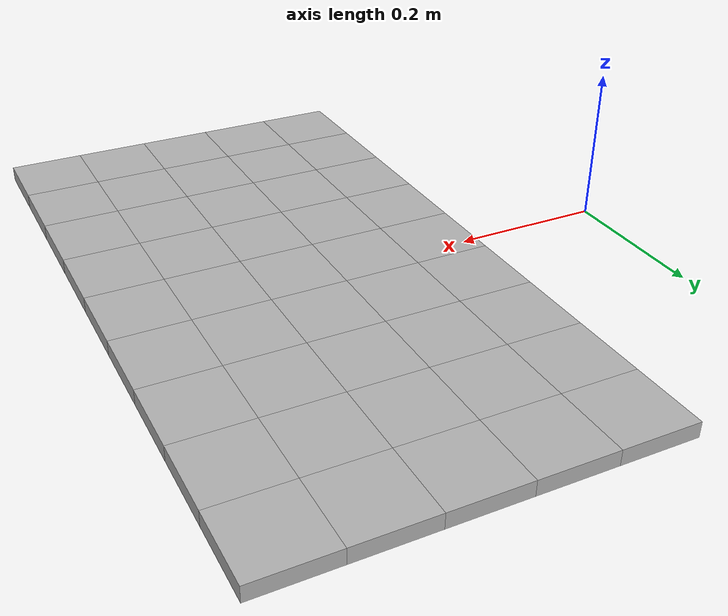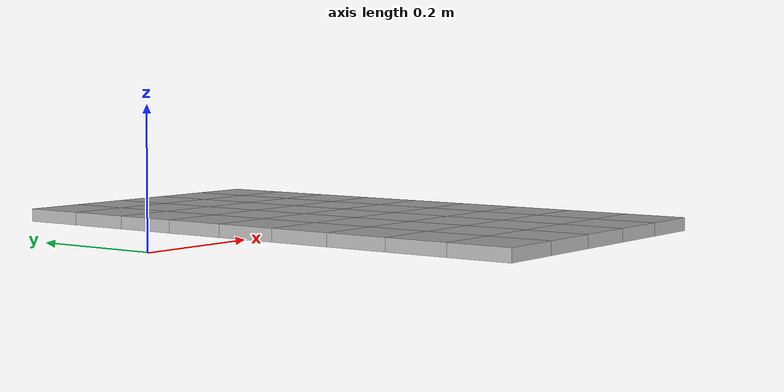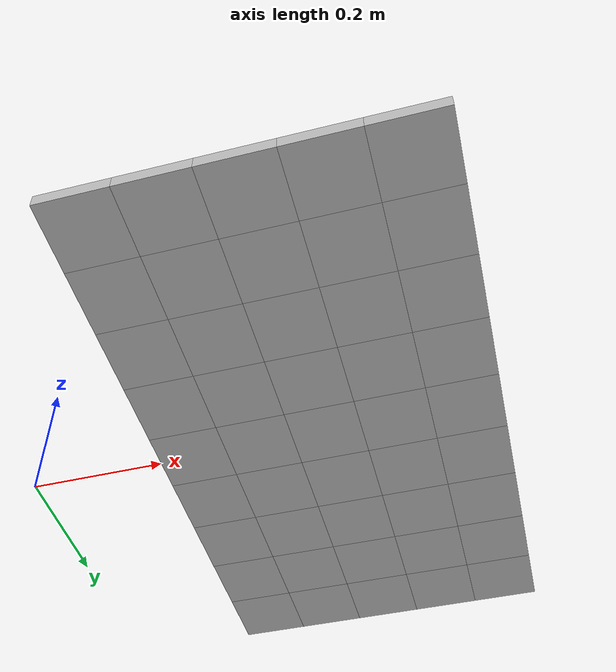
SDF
<?xml version="1.0" ?>
<!-- |    This document was autogenerated by xmacro from model.sdf.xmacro              | -->
<!-- |    EDITING THIS FILE BY HAND IS NOT RECOMMENDED                                 | -->
<sdf version="1.6">
	<model name="all_tiles">
		<model name="object-golf-tile-8.0-1.0-new">
			<pose frame="tile-frame">0.25 -0.4 0.01 0 0 0</pose>
			<link name="link_1">
				<inertial>
					<mass>0.0001</mass>
					<inertia>
						<ixx>1e-6</ixx>
						<ixy>0</ixy>
						<ixz>0</ixz>
						<iyy>1e-6</iyy>
						<iyz>0</iyz>
						<izz>1e-6</izz>
					</inertia>
				</inertial>
				<visual name="visual">
					<geometry>
						<box>
							<size>0.1 0.1 0.02</size>
						</box>
					</geometry>
					<material>
						<ambient>0 0.6 0 0</ambient>
						<diffuse>0.7 0.7 0.7 1</diffuse>
						<specular>0.01 0.01 0.01 1</specular>
						<emissive>0 0 0 1</emissive>
					</material>
				</visual>
				<collision name="collision">
					<geometry>
						<box>
							<size>0.1 0.1 0.02</size>
						</box>
					</geometry>
					<surface>
						<friction>
							<ode>
								<mu>1</mu>
								<mu2>1</mu2>
							</ode>
						</friction>
					</surface>
				</collision>
			</link>
			<static>1</static>
		</model>
		<model name="object-golf-tile-8.0-2.0-new">
			<pose frame="tile-frame">0.25 -0.3 0.01 0 0 0</pose>
			<link name="link_1">
				<inertial>
					<mass>0.0001</mass>
					<inertia>
						<ixx>1e-6</ixx>
						<ixy>0</ixy>
						<ixz>0</ixz>
						<iyy>1e-6</iyy>
						<iyz>0</iyz>
						<izz>1e-6</izz>
					</inertia>
				</inertial>
				<visual name="visual">
					<geometry>
						<box>
							<size>0.1 0.1 0.02</size>
						</box>
					</geometry>
					<material>
						<ambient>0 0.6 0 0</ambient>
						<diffuse>0.7 0.7 0.7 1</diffuse>
						<specular>0.01 0.01 0.01 1</specular>
						<emissive>0 0 0 1</emissive>
					</material>
				</visual>
				<collision name="collision">
					<geometry>
						<box>
							<size>0.1 0.1 0.02</size>
						</box>
					</geometry>
					<surface>
						<friction>
							<ode>
								<mu>1</mu>
								<mu2>1</mu2>
							</ode>
						</friction>
					</surface>
				</collision>
			</link>
			<static>1</static>
		</model>
		<model name="object-golf-tile-8.0-3.0-new">
			<pose frame="tile-frame">0.25 -0.2 0.01 0 0 0</pose>
			<link name="link_1">
				<inertial>
					<mass>0.0001</mass>
					<inertia>
						<ixx>1e-6</ixx>
						<ixy>0</ixy>
						<ixz>0</ixz>
						<iyy>1e-6</iyy>
						<iyz>0</iyz>
						<izz>1e-6</izz>
					</inertia>
				</inertial>
				<visual name="visual">
					<geometry>
						<box>
							<size>0.1 0.1 0.02</size>
						</box>
					</geometry>
					<material>
						<ambient>0 0.6 0 0</ambient>
						<diffuse>0.7 0.7 0.7 1</diffuse>
						<specular>0.01 0.01 0.01 1</specular>
						<emissive>0 0 0 1</emissive>
					</material>
				</visual>
				<collision name="collision">
					<geometry>
						<box>
							<size>0.1 0.1 0.02</size>
						</box>
					</geometry>
					<surface>
						<friction>
							<ode>
								<mu>1</mu>
								<mu2>1</mu2>
							</ode>
						</friction>
					</surface>
				</collision>
			</link>
			<static>1</static>
		</model>
		<model name="object-golf-tile-8.0-4.0-new">
			<pose frame="tile-frame">0.25 -0.1 0.01 0 0 0</pose>
			<link name="link_1">
				<inertial>
					<mass>0.0001</mass>
					<inertia>
						<ixx>1e-6</ixx>
						<ixy>0</ixy>
						<ixz>0</ixz>
						<iyy>1e-6</iyy>
						<iyz>0</iyz>
						<izz>1e-6</izz>
					</inertia>
				</inertial>
				<visual name="visual">
					<geometry>
						<box>
							<size>0.1 0.1 0.02</size>
						</box>
					</geometry>
					<material>
						<ambient>0 0.6 0 0</ambient>
						<diffuse>0.7 0.7 0.7 1</diffuse>
						<specular>0.01 0.01 0.01 1</specular>
						<emissive>0 0 0 1</emissive>
					</material>
				</visual>
				<collision name="collision">
					<geometry>
						<box>
							<size>0.1 0.1 0.02</size>
						</box>
					</geometry>
					<surface>
						<friction>
							<ode>
								<mu>1</mu>
								<mu2>1</mu2>
							</ode>
						</friction>
					</surface>
				</collision>
			</link>
			<static>1</static>
		</model>
		<model name="object-golf-tile-8.0-5.0-new">
			<pose frame="tile-frame">0.25 0.0 0.01 0 0 0</pose>
			<link name="link_1">
				<inertial>
					<mass>0.0001</mass>
					<inertia>
						<ixx>1e-6</ixx>
						<ixy>0</ixy>
						<ixz>0</ixz>
						<iyy>1e-6</iyy>
						<iyz>0</iyz>
						<izz>1e-6</izz>
					</inertia>
				</inertial>
				<visual name="visual">
					<geometry>
						<box>
							<size>0.1 0.1 0.02</size>
						</box>
					</geometry>
					<material>
						<ambient>0 0.6 0 0</ambient>
						<diffuse>0.7 0.7 0.7 1</diffuse>
						<specular>0.01 0.01 0.01 1</specular>
						<emissive>0 0 0 1</emissive>
					</material>
				</visual>
				<collision name="collision">
					<geometry>
						<box>
							<size>0.1 0.1 0.02</size>
						</box>
					</geometry>
					<surface>
						<friction>
							<ode>
								<mu>1</mu>
								<mu2>1</mu2>
							</ode>
						</friction>
					</surface>
				</collision>
			</link>
			<static>1</static>
		</model>
		<model name="object-golf-tile-8.0-6.0-new">
			<pose frame="tile-frame">0.25 0.1 0.01 0 0 0</pose>
			<link name="link_1">
				<inertial>
					<mass>0.0001</mass>
					<inertia>
						<ixx>1e-6</ixx>
						<ixy>0</ixy>
						<ixz>0</ixz>
						<iyy>1e-6</iyy>
						<iyz>0</iyz>
						<izz>1e-6</izz>
					</inertia>
				</inertial>
				<visual name="visual">
					<geometry>
						<box>
							<size>0.1 0.1 0.02</size>
						</box>
					</geometry>
					<material>
						<ambient>0 0.6 0 0</ambient>
						<diffuse>0.7 0.7 0.7 1</diffuse>
						<specular>0.01 0.01 0.01 1</specular>
						<emissive>0 0 0 1</emissive>
					</material>
				</visual>
				<collision name="collision">
					<geometry>
						<box>
							<size>0.1 0.1 0.02</size>
						</box>
					</geometry>
					<surface>
						<friction>
							<ode>
								<mu>1</mu>
								<mu2>1</mu2>
							</ode>
						</friction>
					</surface>
				</collision>
			</link>
			<static>1</static>
		</model>
		<model name="object-golf-tile-8.0-7.0-new">
			<pose frame="tile-frame">0.25 0.2 0.01 0 0 0</pose>
			<link name="link_1">
				<inertial>
					<mass>0.0001</mass>
					<inertia>
						<ixx>1e-6</ixx>
						<ixy>0</ixy>
						<ixz>0</ixz>
						<iyy>1e-6</iyy>
						<iyz>0</iyz>
						<izz>1e-6</izz>
					</inertia>
				</inertial>
				<visual name="visual">
					<geometry>
						<box>
							<size>0.1 0.1 0.02</size>
						</box>
					</geometry>
					<material>
						<ambient>0 0.6 0 0</ambient>
						<diffuse>0.7 0.7 0.7 1</diffuse>
						<specular>0.01 0.01 0.01 1</specular>
						<emissive>0 0 0 1</emissive>
					</material>
				</visual>
				<collision name="collision">
					<geometry>
						<box>
							<size>0.1 0.1 0.02</size>
						</box>
					</geometry>
					<surface>
						<friction>
							<ode>
								<mu>1</mu>
								<mu2>1</mu2>
							</ode>
						</friction>
					</surface>
				</collision>
			</link>
			<static>1</static>
		</model>
		<model name="object-golf-tile-8.0-8.0-new">
			<pose frame="tile-frame">0.25 0.3 0.01 0 0 0</pose>
			<link name="link_1">
				<inertial>
					<mass>0.0001</mass>
					<inertia>
						<ixx>1e-6</ixx>
						<ixy>0</ixy>
						<ixz>0</ixz>
						<iyy>1e-6</iyy>
						<iyz>0</iyz>
						<izz>1e-6</izz>
					</inertia>
				</inertial>
				<visual name="visual">
					<geometry>
						<box>
							<size>0.1 0.1 0.02</size>
						</box>
					</geometry>
					<material>
						<ambient>0 0.6 0 0</ambient>
						<diffuse>0.7 0.7 0.7 1</diffuse>
						<specular>0.01 0.01 0.01 1</specular>
						<emissive>0 0 0 1</emissive>
					</material>
				</visual>
				<collision name="collision">
					<geometry>
						<box>
							<size>0.1 0.1 0.02</size>
						</box>
					</geometry>
					<surface>
						<friction>
							<ode>
								<mu>1</mu>
								<mu2>1</mu2>
							</ode>
						</friction>
					</surface>
				</collision>
			</link>
			<static>1</static>
		</model>
		<model name="object-golf-tile-8.0-9.0-new">
			<pose frame="tile-frame">0.25 0.4 0.01 0 0 0</pose>
			<link name="link_1">
				<inertial>
					<mass>0.0001</mass>
					<inertia>
						<ixx>1e-6</ixx>
						<ixy>0</ixy>
						<ixz>0</ixz>
						<iyy>1e-6</iyy>
						<iyz>0</iyz>
						<izz>1e-6</izz>
					</inertia>
				</inertial>
				<visual name="visual">
					<geometry>
						<box>
							<size>0.1 0.1 0.02</size>
						</box>
					</geometry>
					<material>
						<ambient>0 0.6 0 0</ambient>
						<diffuse>0.7 0.7 0.7 1</diffuse>
						<specular>0.01 0.01 0.01 1</specular>
						<emissive>0 0 0 1</emissive>
					</material>
				</visual>
				<collision name="collision">
					<geometry>
						<box>
							<size>0.1 0.1 0.02</size>
						</box>
					</geometry>
					<surface>
						<friction>
							<ode>
								<mu>1</mu>
								<mu2>1</mu2>
							</ode>
						</friction>
					</surface>
				</collision>
			</link>
			<static>1</static>
		</model>
		<model name="object-golf-tile-9.0-1.0-new">
			<pose frame="tile-frame">0.35 -0.4 0.01 0 0 0</pose>
			<link name="link_1">
				<inertial>
					<mass>0.0001</mass>
					<inertia>
						<ixx>1e-6</ixx>
						<ixy>0</ixy>
						<ixz>0</ixz>
						<iyy>1e-6</iyy>
						<iyz>0</iyz>
						<izz>1e-6</izz>
					</inertia>
				</inertial>
				<visual name="visual">
					<geometry>
						<box>
							<size>0.1 0.1 0.02</size>
						</box>
					</geometry>
					<material>
						<ambient>0 0.6 0 0</ambient>
						<diffuse>0.7 0.7 0.7 1</diffuse>
						<specular>0.01 0.01 0.01 1</specular>
						<emissive>0 0 0 1</emissive>
					</material>
				</visual>
				<collision name="collision">
					<geometry>
						<box>
							<size>0.1 0.1 0.02</size>
						</box>
					</geometry>
					<surface>
						<friction>
							<ode>
								<mu>1</mu>
								<mu2>1</mu2>
							</ode>
						</friction>
					</surface>
				</collision>
			</link>
			<static>1</static>
		</model>
		<model name="object-golf-tile-9.0-2.0-new">
			<pose frame="tile-frame">0.35 -0.3 0.01 0 0 0</pose>
			<link name="link_1">
				<inertial>
					<mass>0.0001</mass>
					<inertia>
						<ixx>1e-6</ixx>
						<ixy>0</ixy>
						<ixz>0</ixz>
						<iyy>1e-6</iyy>
						<iyz>0</iyz>
						<izz>1e-6</izz>
					</inertia>
				</inertial>
				<visual name="visual">
					<geometry>
						<box>
							<size>0.1 0.1 0.02</size>
						</box>
					</geometry>
					<material>
						<ambient>0 0.6 0 0</ambient>
						<diffuse>0.7 0.7 0.7 1</diffuse>
						<specular>0.01 0.01 0.01 1</specular>
						<emissive>0 0 0 1</emissive>
					</material>
				</visual>
				<collision name="collision">
					<geometry>
						<box>
							<size>0.1 0.1 0.02</size>
						</box>
					</geometry>
					<surface>
						<friction>
							<ode>
								<mu>1</mu>
								<mu2>1</mu2>
							</ode>
						</friction>
					</surface>
				</collision>
			</link>
			<static>1</static>
		</model>
		<model name="object-golf-tile-9.0-3.0-new">
			<pose frame="tile-frame">0.35 -0.2 0.01 0 0 0</pose>
			<link name="link_1">
				<inertial>
					<mass>0.0001</mass>
					<inertia>
						<ixx>1e-6</ixx>
						<ixy>0</ixy>
						<ixz>0</ixz>
						<iyy>1e-6</iyy>
						<iyz>0</iyz>
						<izz>1e-6</izz>
					</inertia>
				</inertial>
				<visual name="visual">
					<geometry>
						<box>
							<size>0.1 0.1 0.02</size>
						</box>
					</geometry>
					<material>
						<ambient>0 0.6 0 0</ambient>
						<diffuse>0.7 0.7 0.7 1</diffuse>
						<specular>0.01 0.01 0.01 1</specular>
						<emissive>0 0 0 1</emissive>
					</material>
				</visual>
				<collision name="collision">
					<geometry>
						<box>
							<size>0.1 0.1 0.02</size>
						</box>
					</geometry>
					<surface>
						<friction>
							<ode>
								<mu>1</mu>
								<mu2>1</mu2>
							</ode>
						</friction>
					</surface>
				</collision>
			</link>
			<static>1</static>
		</model>
		<model name="object-golf-tile-9.0-4.0-new">
			<pose frame="tile-frame">0.35 -0.1 0.01 0 0 0</pose>
			<link name="link_1">
				<inertial>
					<mass>0.0001</mass>
					<inertia>
						<ixx>1e-6</ixx>
						<ixy>0</ixy>
						<ixz>0</ixz>
						<iyy>1e-6</iyy>
						<iyz>0</iyz>
						<izz>1e-6</izz>
					</inertia>
				</inertial>
				<visual name="visual">
					<geometry>
						<box>
							<size>0.1 0.1 0.02</size>
						</box>
					</geometry>
					<material>
						<ambient>0 0.6 0 0</ambient>
						<diffuse>0.7 0.7 0.7 1</diffuse>
						<specular>0.01 0.01 0.01 1</specular>
						<emissive>0 0 0 1</emissive>
					</material>
				</visual>
				<collision name="collision">
					<geometry>
						<box>
							<size>0.1 0.1 0.02</size>
						</box>
					</geometry>
					<surface>
						<friction>
							<ode>
								<mu>1</mu>
								<mu2>1</mu2>
							</ode>
						</friction>
					</surface>
				</collision>
			</link>
			<static>1</static>
		</model>
		<model name="object-golf-tile-9.0-5.0-new">
			<pose frame="tile-frame">0.35 0.0 0.01 0 0 0</pose>
			<link name="link_1">
				<inertial>
					<mass>0.0001</mass>
					<inertia>
						<ixx>1e-6</ixx>
						<ixy>0</ixy>
						<ixz>0</ixz>
						<iyy>1e-6</iyy>
						<iyz>0</iyz>
						<izz>1e-6</izz>
					</inertia>
				</inertial>
				<visual name="visual">
					<geometry>
						<box>
							<size>0.1 0.1 0.02</size>
						</box>
					</geometry>
					<material>
						<ambient>0 0.6 0 0</ambient>
						<diffuse>0.7 0.7 0.7 1</diffuse>
						<specular>0.01 0.01 0.01 1</specular>
						<emissive>0 0 0 1</emissive>
					</material>
				</visual>
				<collision name="collision">
					<geometry>
						<box>
							<size>0.1 0.1 0.02</size>
						</box>
					</geometry>
					<surface>
						<friction>
							<ode>
								<mu>1</mu>
								<mu2>1</mu2>
							</ode>
						</friction>
					</surface>
				</collision>
			</link>
			<static>1</static>
		</model>
		<model name="object-golf-tile-9.0-6.0-new">
			<pose frame="tile-frame">0.35 0.1 0.01 0 0 0</pose>
			<link name="link_1">
				<inertial>
					<mass>0.0001</mass>
					<inertia>
						<ixx>1e-6</ixx>
						<ixy>0</ixy>
						<ixz>0</ixz>
						<iyy>1e-6</iyy>
						<iyz>0</iyz>
						<izz>1e-6</izz>
					</inertia>
				</inertial>
				<visual name="visual">
					<geometry>
						<box>
							<size>0.1 0.1 0.02</size>
						</box>
					</geometry>
					<material>
						<ambient>0 0.6 0 0</ambient>
						<diffuse>0.7 0.7 0.7 1</diffuse>
						<specular>0.01 0.01 0.01 1</specular>
						<emissive>0 0 0 1</emissive>
					</material>
				</visual>
				<collision name="collision">
					<geometry>
						<box>
							<size>0.1 0.1 0.02</size>
						</box>
					</geometry>
					<surface>
						<friction>
							<ode>
								<mu>1</mu>
								<mu2>1</mu2>
							</ode>
						</friction>
					</surface>
				</collision>
			</link>
			<static>1</static>
		</model>
		<model name="object-golf-tile-9.0-7.0-new">
			<pose frame="tile-frame">0.35 0.2 0.01 0 0 0</pose>
			<link name="link_1">
				<inertial>
					<mass>0.0001</mass>
					<inertia>
						<ixx>1e-6</ixx>
						<ixy>0</ixy>
						<ixz>0</ixz>
						<iyy>1e-6</iyy>
						<iyz>0</iyz>
						<izz>1e-6</izz>
					</inertia>
				</inertial>
				<visual name="visual">
					<geometry>
						<box>
							<size>0.1 0.1 0.02</size>
						</box>
					</geometry>
					<material>
						<ambient>0 0.6 0 0</ambient>
						<diffuse>0.7 0.7 0.7 1</diffuse>
						<specular>0.01 0.01 0.01 1</specular>
						<emissive>0 0 0 1</emissive>
					</material>
				</visual>
				<collision name="collision">
					<geometry>
						<box>
							<size>0.1 0.1 0.02</size>
						</box>
					</geometry>
					<surface>
						<friction>
							<ode>
								<mu>1</mu>
								<mu2>1</mu2>
							</ode>
						</friction>
					</surface>
				</collision>
			</link>
			<static>1</static>
		</model>
		<model name="object-golf-tile-9.0-8.0-new">
			<pose frame="tile-frame">0.35 0.3 0.01 0 0 0</pose>
			<link name="link_1">
				<inertial>
					<mass>0.0001</mass>
					<inertia>
						<ixx>1e-6</ixx>
						<ixy>0</ixy>
						<ixz>0</ixz>
						<iyy>1e-6</iyy>
						<iyz>0</iyz>
						<izz>1e-6</izz>
					</inertia>
				</inertial>
				<visual name="visual">
					<geometry>
						<box>
							<size>0.1 0.1 0.02</size>
						</box>
					</geometry>
					<material>
						<ambient>0 0.6 0 0</ambient>
						<diffuse>0.7 0.7 0.7 1</diffuse>
						<specular>0.01 0.01 0.01 1</specular>
						<emissive>0 0 0 1</emissive>
					</material>
				</visual>
				<collision name="collision">
					<geometry>
						<box>
							<size>0.1 0.1 0.02</size>
						</box>
					</geometry>
					<surface>
						<friction>
							<ode>
								<mu>1</mu>
								<mu2>1</mu2>
							</ode>
						</friction>
					</surface>
				</collision>
			</link>
			<static>1</static>
		</model>
		<model name="object-golf-tile-9.0-9.0-new">
			<pose frame="tile-frame">0.35 0.4 0.01 0 0 0</pose>
			<link name="link_1">
				<inertial>
					<mass>0.0001</mass>
					<inertia>
						<ixx>1e-6</ixx>
						<ixy>0</ixy>
						<ixz>0</ixz>
						<iyy>1e-6</iyy>
						<iyz>0</iyz>
						<izz>1e-6</izz>
					</inertia>
				</inertial>
				<visual name="visual">
					<geometry>
						<box>
							<size>0.1 0.1 0.02</size>
						</box>
					</geometry>
					<material>
						<ambient>0 0.6 0 0</ambient>
						<diffuse>0.7 0.7 0.7 1</diffuse>
						<specular>0.01 0.01 0.01 1</specular>
						<emissive>0 0 0 1</emissive>
					</material>
				</visual>
				<collision name="collision">
					<geometry>
						<box>
							<size>0.1 0.1 0.02</size>
						</box>
					</geometry>
					<surface>
						<friction>
							<ode>
								<mu>1</mu>
								<mu2>1</mu2>
							</ode>
						</friction>
					</surface>
				</collision>
			</link>
			<static>1</static>
		</model>
		<model name="object-golf-tile-10.0-1.0-new">
			<pose frame="tile-frame">0.45 -0.4 0.01 0 0 0</pose>
			<link name="link_1">
				<inertial>
					<mass>0.0001</mass>
					<inertia>
						<ixx>1e-6</ixx>
						<ixy>0</ixy>
						<ixz>0</ixz>
						<iyy>1e-6</iyy>
						<iyz>0</iyz>
						<izz>1e-6</izz>
					</inertia>
				</inertial>
				<visual name="visual">
					<geometry>
						<box>
							<size>0.1 0.1 0.02</size>
						</box>
					</geometry>
					<material>
						<ambient>0 0.6 0 0</ambient>
						<diffuse>0.7 0.7 0.7 1</diffuse>
						<specular>0.01 0.01 0.01 1</specular>
						<emissive>0 0 0 1</emissive>
					</material>
				</visual>
				<collision name="collision">
					<geometry>
						<box>
							<size>0.1 0.1 0.02</size>
						</box>
					</geometry>
					<surface>
						<friction>
							<ode>
								<mu>1</mu>
								<mu2>1</mu2>
							</ode>
						</friction>
					</surface>
				</collision>
			</link>
			<static>1</static>
		</model>
		<model name="object-golf-tile-10.0-2.0-new">
			<pose frame="tile-frame">0.45 -0.3 0.01 0 0 0</pose>
			<link name="link_1">
				<inertial>
					<mass>0.0001</mass>
					<inertia>
						<ixx>1e-6</ixx>
						<ixy>0</ixy>
						<ixz>0</ixz>
						<iyy>1e-6</iyy>
						<iyz>0</iyz>
						<izz>1e-6</izz>
					</inertia>
				</inertial>
				<visual name="visual">
					<geometry>
						<box>
							<size>0.1 0.1 0.02</size>
						</box>
					</geometry>
					<material>
						<ambient>0 0.6 0 0</ambient>
						<diffuse>0.7 0.7 0.7 1</diffuse>
						<specular>0.01 0.01 0.01 1</specular>
						<emissive>0 0 0 1</emissive>
					</material>
				</visual>
				<collision name="collision">
					<geometry>
						<box>
							<size>0.1 0.1 0.02</size>
						</box>
					</geometry>
					<surface>
						<friction>
							<ode>
								<mu>1</mu>
								<mu2>1</mu2>
							</ode>
						</friction>
					</surface>
				</collision>
			</link>
			<static>1</static>
		</model>
		<model name="object-golf-tile-10.0-3.0-new">
			<pose frame="tile-frame">0.45 -0.2 0.01 0 0 0</pose>
			<link name="link_1">
				<inertial>
					<mass>0.0001</mass>
					<inertia>
						<ixx>1e-6</ixx>
						<ixy>0</ixy>
						<ixz>0</ixz>
						<iyy>1e-6</iyy>
						<iyz>0</iyz>
						<izz>1e-6</izz>
					</inertia>
				</inertial>
				<visual name="visual">
					<geometry>
						<box>
							<size>0.1 0.1 0.02</size>
						</box>
					</geometry>
					<material>
						<ambient>0 0.6 0 0</ambient>
						<diffuse>0.7 0.7 0.7 1</diffuse>
						<specular>0.01 0.01 0.01 1</specular>
						<emissive>0 0 0 1</emissive>
					</material>
				</visual>
				<collision name="collision">
					<geometry>
						<box>
							<size>0.1 0.1 0.02</size>
						</box>
					</geometry>
					<surface>
						<friction>
							<ode>
								<mu>1</mu>
								<mu2>1</mu2>
							</ode>
						</friction>
					</surface>
				</collision>
			</link>
			<static>1</static>
		</model>
		<model name="object-golf-tile-10.0-4.0-new">
			<pose frame="tile-frame">0.45 -0.1 0.01 0 0 0</pose>
			<link name="link_1">
				<inertial>
					<mass>0.0001</mass>
					<inertia>
						<ixx>1e-6</ixx>
						<ixy>0</ixy>
						<ixz>0</ixz>
						<iyy>1e-6</iyy>
						<iyz>0</iyz>
						<izz>1e-6</izz>
					</inertia>
				</inertial>
				<visual name="visual">
					<geometry>
						<box>
							<size>0.1 0.1 0.02</size>
						</box>
					</geometry>
					<material>
						<ambient>0 0.6 0 0</ambient>
						<diffuse>0.7 0.7 0.7 1</diffuse>
						<specular>0.01 0.01 0.01 1</specular>
						<emissive>0 0 0 1</emissive>
					</material>
				</visual>
				<collision name="collision">
					<geometry>
						<box>
							<size>0.1 0.1 0.02</size>
						</box>
					</geometry>
					<surface>
						<friction>
							<ode>
								<mu>1</mu>
								<mu2>1</mu2>
							</ode>
						</friction>
					</surface>
				</collision>
			</link>
			<static>1</static>
		</model>
		<model name="object-golf-tile-10.0-5.0-new">
			<pose frame="tile-frame">0.45 0.0 0.01 0 0 0</pose>
			<link name="link_1">
				<inertial>
					<mass>0.0001</mass>
					<inertia>
						<ixx>1e-6</ixx>
						<ixy>0</ixy>
						<ixz>0</ixz>
						<iyy>1e-6</iyy>
						<iyz>0</iyz>
						<izz>1e-6</izz>
					</inertia>
				</inertial>
				<visual name="visual">
					<geometry>
						<box>
							<size>0.1 0.1 0.02</size>
						</box>
					</geometry>
					<material>
						<ambient>0 0.6 0 0</ambient>
						<diffuse>0.7 0.7 0.7 1</diffuse>
						<specular>0.01 0.01 0.01 1</specular>
						<emissive>0 0 0 1</emissive>
					</material>
				</visual>
				<collision name="collision">
					<geometry>
						<box>
							<size>0.1 0.1 0.02</size>
						</box>
					</geometry>
					<surface>
						<friction>
							<ode>
								<mu>1</mu>
								<mu2>1</mu2>
							</ode>
						</friction>
					</surface>
				</collision>
			</link>
			<static>1</static>
		</model>
		<model name="object-golf-tile-10.0-6.0-new">
			<pose frame="tile-frame">0.45 0.1 0.01 0 0 0</pose>
			<link name="link_1">
				<inertial>
					<mass>0.0001</mass>
					<inertia>
						<ixx>1e-6</ixx>
						<ixy>0</ixy>
						<ixz>0</ixz>
						<iyy>1e-6</iyy>
						<iyz>0</iyz>
						<izz>1e-6</izz>
					</inertia>
				</inertial>
				<visual name="visual">
					<geometry>
						<box>
							<size>0.1 0.1 0.02</size>
						</box>
					</geometry>
					<material>
						<ambient>0 0.6 0 0</ambient>
						<diffuse>0.7 0.7 0.7 1</diffuse>
						<specular>0.01 0.01 0.01 1</specular>
						<emissive>0 0 0 1</emissive>
					</material>
				</visual>
				<collision name="collision">
					<geometry>
						<box>
							<size>0.1 0.1 0.02</size>
						</box>
					</geometry>
					<surface>
						<friction>
							<ode>
								<mu>1</mu>
								<mu2>1</mu2>
							</ode>
						</friction>
					</surface>
				</collision>
			</link>
			<static>1</static>
		</model>
		<model name="object-golf-tile-10.0-7.0-new">
			<pose frame="tile-frame">0.45 0.2 0.01 0 0 0</pose>
			<link name="link_1">
				<inertial>
					<mass>0.0001</mass>
					<inertia>
						<ixx>1e-6</ixx>
						<ixy>0</ixy>
						<ixz>0</ixz>
						<iyy>1e-6</iyy>
						<iyz>0</iyz>
						<izz>1e-6</izz>
					</inertia>
				</inertial>
				<visual name="visual">
					<geometry>
						<box>
							<size>0.1 0.1 0.02</size>
						</box>
					</geometry>
					<material>
						<ambient>0 0.6 0 0</ambient>
						<diffuse>0.7 0.7 0.7 1</diffuse>
						<specular>0.01 0.01 0.01 1</specular>
						<emissive>0 0 0 1</emissive>
					</material>
				</visual>
				<collision name="collision">
					<geometry>
						<box>
							<size>0.1 0.1 0.02</size>
						</box>
					</geometry>
					<surface>
						<friction>
							<ode>
								<mu>1</mu>
								<mu2>1</mu2>
							</ode>
						</friction>
					</surface>
				</collision>
			</link>
			<static>1</static>
		</model>
		<model name="object-golf-tile-10.0-8.0-new">
			<pose frame="tile-frame">0.45 0.3 0.01 0 0 0</pose>
			<link name="link_1">
				<inertial>
					<mass>0.0001</mass>
					<inertia>
						<ixx>1e-6</ixx>
						<ixy>0</ixy>
						<ixz>0</ixz>
						<iyy>1e-6</iyy>
						<iyz>0</iyz>
						<izz>1e-6</izz>
					</inertia>
				</inertial>
				<visual name="visual">
					<geometry>
						<box>
							<size>0.1 0.1 0.02</size>
						</box>
					</geometry>
					<material>
						<ambient>0 0.6 0 0</ambient>
						<diffuse>0.7 0.7 0.7 1</diffuse>
						<specular>0.01 0.01 0.01 1</specular>
						<emissive>0 0 0 1</emissive>
					</material>
				</visual>
				<collision name="collision">
					<geometry>
						<box>
							<size>0.1 0.1 0.02</size>
						</box>
					</geometry>
					<surface>
						<friction>
							<ode>
								<mu>1</mu>
								<mu2>1</mu2>
							</ode>
						</friction>
					</surface>
				</collision>
			</link>
			<static>1</static>
		</model>
		<model name="object-golf-tile-10.0-9.0-new">
			<pose frame="tile-frame">0.45 0.4 0.01 0 0 0</pose>
			<link name="link_1">
				<inertial>
					<mass>0.0001</mass>
					<inertia>
						<ixx>1e-6</ixx>
						<ixy>0</ixy>
						<ixz>0</ixz>
						<iyy>1e-6</iyy>
						<iyz>0</iyz>
						<izz>1e-6</izz>
					</inertia>
				</inertial>
				<visual name="visual">
					<geometry>
						<box>
							<size>0.1 0.1 0.02</size>
						</box>
					</geometry>
					<material>
						<ambient>0 0.6 0 0</ambient>
						<diffuse>0.7 0.7 0.7 1</diffuse>
						<specular>0.01 0.01 0.01 1</specular>
						<emissive>0 0 0 1</emissive>
					</material>
				</visual>
				<collision name="collision">
					<geometry>
						<box>
							<size>0.1 0.1 0.02</size>
						</box>
					</geometry>
					<surface>
						<friction>
							<ode>
								<mu>1</mu>
								<mu2>1</mu2>
							</ode>
						</friction>
					</surface>
				</collision>
			</link>
			<static>1</static>
		</model>
		<model name="object-golf-tile-11.0-1.0-new">
			<pose frame="tile-frame">0.55 -0.4 0.01 0 0 0</pose>
			<link name="link_1">
				<inertial>
					<mass>0.0001</mass>
					<inertia>
						<ixx>1e-6</ixx>
						<ixy>0</ixy>
						<ixz>0</ixz>
						<iyy>1e-6</iyy>
						<iyz>0</iyz>
						<izz>1e-6</izz>
					</inertia>
				</inertial>
				<visual name="visual">
					<geometry>
						<box>
							<size>0.1 0.1 0.02</size>
						</box>
					</geometry>
					<material>
						<ambient>0 0.6 0 0</ambient>
						<diffuse>0.7 0.7 0.7 1</diffuse>
						<specular>0.01 0.01 0.01 1</specular>
						<emissive>0 0 0 1</emissive>
					</material>
				</visual>
				<collision name="collision">
					<geometry>
						<box>
							<size>0.1 0.1 0.02</size>
						</box>
					</geometry>
					<surface>
						<friction>
							<ode>
								<mu>1</mu>
								<mu2>1</mu2>
							</ode>
						</friction>
					</surface>
				</collision>
			</link>
			<static>1</static>
		</model>
		<model name="object-golf-tile-11.0-2.0-new">
			<pose frame="tile-frame">0.55 -0.3 0.01 0 0 0</pose>
			<link name="link_1">
				<inertial>
					<mass>0.0001</mass>
					<inertia>
						<ixx>1e-6</ixx>
						<ixy>0</ixy>
						<ixz>0</ixz>
						<iyy>1e-6</iyy>
						<iyz>0</iyz>
						<izz>1e-6</izz>
					</inertia>
				</inertial>
				<visual name="visual">
					<geometry>
						<box>
							<size>0.1 0.1 0.02</size>
						</box>
					</geometry>
					<material>
						<ambient>0 0.6 0 0</ambient>
						<diffuse>0.7 0.7 0.7 1</diffuse>
						<specular>0.01 0.01 0.01 1</specular>
						<emissive>0 0 0 1</emissive>
					</material>
				</visual>
				<collision name="collision">
					<geometry>
						<box>
							<size>0.1 0.1 0.02</size>
						</box>
					</geometry>
					<surface>
						<friction>
							<ode>
								<mu>1</mu>
								<mu2>1</mu2>
							</ode>
						</friction>
					</surface>
				</collision>
			</link>
			<static>1</static>
		</model>
		<model name="object-golf-tile-11.0-3.0-new">
			<pose frame="tile-frame">0.55 -0.2 0.01 0 0 0</pose>
			<link name="link_1">
				<inertial>
					<mass>0.0001</mass>
					<inertia>
						<ixx>1e-6</ixx>
						<ixy>0</ixy>
						<ixz>0</ixz>
						<iyy>1e-6</iyy>
						<iyz>0</iyz>
						<izz>1e-6</izz>
					</inertia>
				</inertial>
				<visual name="visual">
					<geometry>
						<box>
							<size>0.1 0.1 0.02</size>
						</box>
					</geometry>
					<material>
						<ambient>0 0.6 0 0</ambient>
						<diffuse>0.7 0.7 0.7 1</diffuse>
						<specular>0.01 0.01 0.01 1</specular>
						<emissive>0 0 0 1</emissive>
					</material>
				</visual>
				<collision name="collision">
					<geometry>
						<box>
							<size>0.1 0.1 0.02</size>
						</box>
					</geometry>
					<surface>
						<friction>
							<ode>
								<mu>1</mu>
								<mu2>1</mu2>
							</ode>
						</friction>
					</surface>
				</collision>
			</link>
			<static>1</static>
		</model>
		<model name="object-golf-tile-11.0-4.0-new">
			<pose frame="tile-frame">0.55 -0.1 0.01 0 0 0</pose>
			<link name="link_1">
				<inertial>
					<mass>0.0001</mass>
					<inertia>
						<ixx>1e-6</ixx>
						<ixy>0</ixy>
						<ixz>0</ixz>
						<iyy>1e-6</iyy>
						<iyz>0</iyz>
						<izz>1e-6</izz>
					</inertia>
				</inertial>
				<visual name="visual">
					<geometry>
						<box>
							<size>0.1 0.1 0.02</size>
						</box>
					</geometry>
					<material>
						<ambient>0 0.6 0 0</ambient>
						<diffuse>0.7 0.7 0.7 1</diffuse>
						<specular>0.01 0.01 0.01 1</specular>
						<emissive>0 0 0 1</emissive>
					</material>
				</visual>
				<collision name="collision">
					<geometry>
						<box>
							<size>0.1 0.1 0.02</size>
						</box>
					</geometry>
					<surface>
						<friction>
							<ode>
								<mu>1</mu>
								<mu2>1</mu2>
							</ode>
						</friction>
					</surface>
				</collision>
			</link>
			<static>1</static>
		</model>
		<model name="object-golf-tile-11.0-5.0-new">
			<pose frame="tile-frame">0.55 0.0 0.01 0 0 0</pose>
			<link name="link_1">
				<inertial>
					<mass>0.0001</mass>
					<inertia>
						<ixx>1e-6</ixx>
						<ixy>0</ixy>
						<ixz>0</ixz>
						<iyy>1e-6</iyy>
						<iyz>0</iyz>
						<izz>1e-6</izz>
					</inertia>
				</inertial>
				<visual name="visual">
					<geometry>
						<box>
							<size>0.1 0.1 0.02</size>
						</box>
					</geometry>
					<material>
						<ambient>0 0.6 0 0</ambient>
						<diffuse>0.7 0.7 0.7 1</diffuse>
						<specular>0.01 0.01 0.01 1</specular>
						<emissive>0 0 0 1</emissive>
					</material>
				</visual>
				<collision name="collision">
					<geometry>
						<box>
							<size>0.1 0.1 0.02</size>
						</box>
					</geometry>
					<surface>
						<friction>
							<ode>
								<mu>1</mu>
								<mu2>1</mu2>
							</ode>
						</friction>
					</surface>
				</collision>
			</link>
			<static>1</static>
		</model>
		<model name="object-golf-tile-11.0-6.0-new">
			<pose frame="tile-frame">0.55 0.1 0.01 0 0 0</pose>
			<link name="link_1">
				<inertial>
					<mass>0.0001</mass>
					<inertia>
						<ixx>1e-6</ixx>
						<ixy>0</ixy>
						<ixz>0</ixz>
						<iyy>1e-6</iyy>
						<iyz>0</iyz>
						<izz>1e-6</izz>
					</inertia>
				</inertial>
				<visual name="visual">
					<geometry>
						<box>
							<size>0.1 0.1 0.02</size>
						</box>
					</geometry>
					<material>
						<ambient>0 0.6 0 0</ambient>
						<diffuse>0.7 0.7 0.7 1</diffuse>
						<specular>0.01 0.01 0.01 1</specular>
						<emissive>0 0 0 1</emissive>
					</material>
				</visual>
				<collision name="collision">
					<geometry>
						<box>
							<size>0.1 0.1 0.02</size>
						</box>
					</geometry>
					<surface>
						<friction>
							<ode>
								<mu>1</mu>
								<mu2>1</mu2>
							</ode>
						</friction>
					</surface>
				</collision>
			</link>
			<static>1</static>
		</model>
		<model name="object-golf-tile-11.0-7.0-new">
			<pose frame="tile-frame">0.55 0.2 0.01 0 0 0</pose>
			<link name="link_1">
				<inertial>
					<mass>0.0001</mass>
					<inertia>
						<ixx>1e-6</ixx>
						<ixy>0</ixy>
						<ixz>0</ixz>
						<iyy>1e-6</iyy>
						<iyz>0</iyz>
						<izz>1e-6</izz>
					</inertia>
				</inertial>
				<visual name="visual">
					<geometry>
						<box>
							<size>0.1 0.1 0.02</size>
						</box>
					</geometry>
					<material>
						<ambient>0 0.6 0 0</ambient>
						<diffuse>0.7 0.7 0.7 1</diffuse>
						<specular>0.01 0.01 0.01 1</specular>
						<emissive>0 0 0 1</emissive>
					</material>
				</visual>
				<collision name="collision">
					<geometry>
						<box>
							<size>0.1 0.1 0.02</size>
						</box>
					</geometry>
					<surface>
						<friction>
							<ode>
								<mu>1</mu>
								<mu2>1</mu2>
							</ode>
						</friction>
					</surface>
				</collision>
			</link>
			<static>1</static>
		</model>
		<model name="object-golf-tile-11.0-8.0-new">
			<pose frame="tile-frame">0.55 0.3 0.01 0 0 0</pose>
			<link name="link_1">
				<inertial>
					<mass>0.0001</mass>
					<inertia>
						<ixx>1e-6</ixx>
						<ixy>0</ixy>
						<ixz>0</ixz>
						<iyy>1e-6</iyy>
						<iyz>0</iyz>
						<izz>1e-6</izz>
					</inertia>
				</inertial>
				<visual name="visual">
					<geometry>
						<box>
							<size>0.1 0.1 0.02</size>
						</box>
					</geometry>
					<material>
						<ambient>0 0.6 0 0</ambient>
						<diffuse>0.7 0.7 0.7 1</diffuse>
						<specular>0.01 0.01 0.01 1</specular>
						<emissive>0 0 0 1</emissive>
					</material>
				</visual>
				<collision name="collision">
					<geometry>
						<box>
							<size>0.1 0.1 0.02</size>
						</box>
					</geometry>
					<surface>
						<friction>
							<ode>
								<mu>1</mu>
								<mu2>1</mu2>
							</ode>
						</friction>
					</surface>
				</collision>
			</link>
			<static>1</static>
		</model>
		<model name="object-golf-tile-11.0-9.0-new">
			<pose frame="tile-frame">0.55 0.4 0.01 0 0 0</pose>
			<link name="link_1">
				<inertial>
					<mass>0.0001</mass>
					<inertia>
						<ixx>1e-6</ixx>
						<ixy>0</ixy>
						<ixz>0</ixz>
						<iyy>1e-6</iyy>
						<iyz>0</iyz>
						<izz>1e-6</izz>
					</inertia>
				</inertial>
				<visual name="visual">
					<geometry>
						<box>
							<size>0.1 0.1 0.02</size>
						</box>
					</geometry>
					<material>
						<ambient>0 0.6 0 0</ambient>
						<diffuse>0.7 0.7 0.7 1</diffuse>
						<specular>0.01 0.01 0.01 1</specular>
						<emissive>0 0 0 1</emissive>
					</material>
				</visual>
				<collision name="collision">
					<geometry>
						<box>
							<size>0.1 0.1 0.02</size>
						</box>
					</geometry>
					<surface>
						<friction>
							<ode>
								<mu>1</mu>
								<mu2>1</mu2>
							</ode>
						</friction>
					</surface>
				</collision>
			</link>
			<static>1</static>
		</model>
		<model name="object-golf-tile-12.0-1.0-new">
			<pose frame="tile-frame">0.65 -0.4 0.01 0 0 0</pose>
			<link name="link_1">
				<inertial>
					<mass>0.0001</mass>
					<inertia>
						<ixx>1e-6</ixx>
						<ixy>0</ixy>
						<ixz>0</ixz>
						<iyy>1e-6</iyy>
						<iyz>0</iyz>
						<izz>1e-6</izz>
					</inertia>
				</inertial>
				<visual name="visual">
					<geometry>
						<box>
							<size>0.1 0.1 0.02</size>
						</box>
					</geometry>
					<material>
						<ambient>0 0.6 0 0</ambient>
						<diffuse>0.7 0.7 0.7 1</diffuse>
						<specular>0.01 0.01 0.01 1</specular>
						<emissive>0 0 0 1</emissive>
					</material>
				</visual>
				<collision name="collision">
					<geometry>
						<box>
							<size>0.1 0.1 0.02</size>
						</box>
					</geometry>
					<surface>
						<friction>
							<ode>
								<mu>1</mu>
								<mu2>1</mu2>
							</ode>
						</friction>
					</surface>
				</collision>
			</link>
			<static>1</static>
		</model>
		<model name="object-golf-tile-12.0-2.0-new">
			<pose frame="tile-frame">0.65 -0.3 0.01 0 0 0</pose>
			<link name="link_1">
				<inertial>
					<mass>0.0001</mass>
					<inertia>
						<ixx>1e-6</ixx>
						<ixy>0</ixy>
						<ixz>0</ixz>
						<iyy>1e-6</iyy>
						<iyz>0</iyz>
						<izz>1e-6</izz>
					</inertia>
				</inertial>
				<visual name="visual">
					<geometry>
						<box>
							<size>0.1 0.1 0.02</size>
						</box>
					</geometry>
					<material>
						<ambient>0 0.6 0 0</ambient>
						<diffuse>0.7 0.7 0.7 1</diffuse>
						<specular>0.01 0.01 0.01 1</specular>
						<emissive>0 0 0 1</emissive>
					</material>
				</visual>
				<collision name="collision">
					<geometry>
						<box>
							<size>0.1 0.1 0.02</size>
						</box>
					</geometry>
					<surface>
						<friction>
							<ode>
								<mu>1</mu>
								<mu2>1</mu2>
							</ode>
						</friction>
					</surface>
				</collision>
			</link>
			<static>1</static>
		</model>
		<model name="object-golf-tile-12.0-3.0-new">
			<pose frame="tile-frame">0.65 -0.2 0.01 0 0 0</pose>
			<link name="link_1">
				<inertial>
					<mass>0.0001</mass>
					<inertia>
						<ixx>1e-6</ixx>
						<ixy>0</ixy>
						<ixz>0</ixz>
						<iyy>1e-6</iyy>
						<iyz>0</iyz>
						<izz>1e-6</izz>
					</inertia>
				</inertial>
				<visual name="visual">
					<geometry>
						<box>
							<size>0.1 0.1 0.02</size>
						</box>
					</geometry>
					<material>
						<ambient>0 0.6 0 0</ambient>
						<diffuse>0.7 0.7 0.7 1</diffuse>
						<specular>0.01 0.01 0.01 1</specular>
						<emissive>0 0 0 1</emissive>
					</material>
				</visual>
				<collision name="collision">
					<geometry>
						<box>
							<size>0.1 0.1 0.02</size>
						</box>
					</geometry>
					<surface>
						<friction>
							<ode>
								<mu>1</mu>
								<mu2>1</mu2>
							</ode>
						</friction>
					</surface>
				</collision>
			</link>
			<static>1</static>
		</model>
		<model name="object-golf-tile-12.0-4.0-new">
			<pose frame="tile-frame">0.65 -0.1 0.01 0 0 0</pose>
			<link name="link_1">
				<inertial>
					<mass>0.0001</mass>
					<inertia>
						<ixx>1e-6</ixx>
						<ixy>0</ixy>
						<ixz>0</ixz>
						<iyy>1e-6</iyy>
						<iyz>0</iyz>
						<izz>1e-6</izz>
					</inertia>
				</inertial>
				<visual name="visual">
					<geometry>
						<box>
							<size>0.1 0.1 0.02</size>
						</box>
					</geometry>
					<material>
						<ambient>0 0.6 0 0</ambient>
						<diffuse>0.7 0.7 0.7 1</diffuse>
						<specular>0.01 0.01 0.01 1</specular>
						<emissive>0 0 0 1</emissive>
					</material>
				</visual>
				<collision name="collision">
					<geometry>
						<box>
							<size>0.1 0.1 0.02</size>
						</box>
					</geometry>
					<surface>
						<friction>
							<ode>
								<mu>1</mu>
								<mu2>1</mu2>
							</ode>
						</friction>
					</surface>
				</collision>
			</link>
			<static>1</static>
		</model>
		<model name="object-golf-tile-12.0-5.0-new">
			<pose frame="tile-frame">0.65 0.0 0.01 0 0 0</pose>
			<link name="link_1">
				<inertial>
					<mass>0.0001</mass>
					<inertia>
						<ixx>1e-6</ixx>
						<ixy>0</ixy>
						<ixz>0</ixz>
						<iyy>1e-6</iyy>
						<iyz>0</iyz>
						<izz>1e-6</izz>
					</inertia>
				</inertial>
				<visual name="visual">
					<geometry>
						<box>
							<size>0.1 0.1 0.02</size>
						</box>
					</geometry>
					<material>
						<ambient>0 0.6 0 0</ambient>
						<diffuse>0.7 0.7 0.7 1</diffuse>
						<specular>0.01 0.01 0.01 1</specular>
						<emissive>0 0 0 1</emissive>
					</material>
				</visual>
				<collision name="collision">
					<geometry>
						<box>
							<size>0.1 0.1 0.02</size>
						</box>
					</geometry>
					<surface>
						<friction>
							<ode>
								<mu>1</mu>
								<mu2>1</mu2>
							</ode>
						</friction>
					</surface>
				</collision>
			</link>
			<static>1</static>
		</model>
		<model name="object-golf-tile-12.0-6.0-new">
			<pose frame="tile-frame">0.65 0.1 0.01 0 0 0</pose>
			<link name="link_1">
				<inertial>
					<mass>0.0001</mass>
					<inertia>
						<ixx>1e-6</ixx>
						<ixy>0</ixy>
						<ixz>0</ixz>
						<iyy>1e-6</iyy>
						<iyz>0</iyz>
						<izz>1e-6</izz>
					</inertia>
				</inertial>
				<visual name="visual">
					<geometry>
						<box>
							<size>0.1 0.1 0.02</size>
						</box>
					</geometry>
					<material>
						<ambient>0 0.6 0 0</ambient>
						<diffuse>0.7 0.7 0.7 1</diffuse>
						<specular>0.01 0.01 0.01 1</specular>
						<emissive>0 0 0 1</emissive>
					</material>
				</visual>
				<collision name="collision">
					<geometry>
						<box>
							<size>0.1 0.1 0.02</size>
						</box>
					</geometry>
					<surface>
						<friction>
							<ode>
								<mu>1</mu>
								<mu2>1</mu2>
							</ode>
						</friction>
					</surface>
				</collision>
			</link>
			<static>1</static>
		</model>
		<model name="object-golf-tile-12.0-7.0-new">
			<pose frame="tile-frame">0.65 0.2 0.01 0 0 0</pose>
			<link name="link_1">
				<inertial>
					<mass>0.0001</mass>
					<inertia>
						<ixx>1e-6</ixx>
						<ixy>0</ixy>
						<ixz>0</ixz>
						<iyy>1e-6</iyy>
						<iyz>0</iyz>
						<izz>1e-6</izz>
					</inertia>
				</inertial>
				<visual name="visual">
					<geometry>
						<box>
							<size>0.1 0.1 0.02</size>
						</box>
					</geometry>
					<material>
						<ambient>0 0.6 0 0</ambient>
						<diffuse>0.7 0.7 0.7 1</diffuse>
						<specular>0.01 0.01 0.01 1</specular>
						<emissive>0 0 0 1</emissive>
					</material>
				</visual>
				<collision name="collision">
					<geometry>
						<box>
							<size>0.1 0.1 0.02</size>
						</box>
					</geometry>
					<surface>
						<friction>
							<ode>
								<mu>1</mu>
								<mu2>1</mu2>
							</ode>
						</friction>
					</surface>
				</collision>
			</link>
			<static>1</static>
		</model>
		<model name="object-golf-tile-12.0-8.0-new">
			<pose frame="tile-frame">0.65 0.3 0.01 0 0 0</pose>
			<link name="link_1">
				<inertial>
					<mass>0.0001</mass>
					<inertia>
						<ixx>1e-6</ixx>
						<ixy>0</ixy>
						<ixz>0</ixz>
						<iyy>1e-6</iyy>
						<iyz>0</iyz>
						<izz>1e-6</izz>
					</inertia>
				</inertial>
				<visual name="visual">
					<geometry>
						<box>
							<size>0.1 0.1 0.02</size>
						</box>
					</geometry>
					<material>
						<ambient>0 0.6 0 0</ambient>
						<diffuse>0.7 0.7 0.7 1</diffuse>
						<specular>0.01 0.01 0.01 1</specular>
						<emissive>0 0 0 1</emissive>
					</material>
				</visual>
				<collision name="collision">
					<geometry>
						<box>
							<size>0.1 0.1 0.02</size>
						</box>
					</geometry>
					<surface>
						<friction>
							<ode>
								<mu>1</mu>
								<mu2>1</mu2>
							</ode>
						</friction>
					</surface>
				</collision>
			</link>
			<static>1</static>
		</model>
		<model name="object-golf-tile-12.0-9.0-new">
			<pose frame="tile-frame">0.65 0.4 0.01 0 0 0</pose>
			<link name="link_1">
				<inertial>
					<mass>0.0001</mass>
					<inertia>
						<ixx>1e-6</ixx>
						<ixy>0</ixy>
						<ixz>0</ixz>
						<iyy>1e-6</iyy>
						<iyz>0</iyz>
						<izz>1e-6</izz>
					</inertia>
				</inertial>
				<visual name="visual">
					<geometry>
						<box>
							<size>0.1 0.1 0.02</size>
						</box>
					</geometry>
					<material>
						<ambient>0 0.6 0 0</ambient>
						<diffuse>0.7 0.7 0.7 1</diffuse>
						<specular>0.01 0.01 0.01 1</specular>
						<emissive>0 0 0 1</emissive>
					</material>
				</visual>
				<collision name="collision">
					<geometry>
						<box>
							<size>0.1 0.1 0.02</size>
						</box>
					</geometry>
					<surface>
						<friction>
							<ode>
								<mu>1</mu>
								<mu2>1</mu2>
							</ode>
						</friction>
					</surface>
				</collision>
			</link>
			<static>1</static>
		</model>
	</model>
</sdf>
